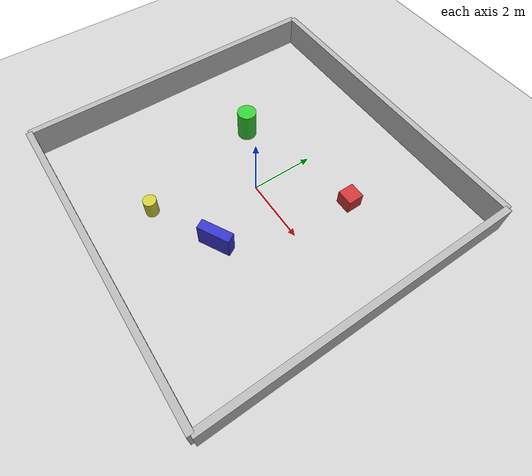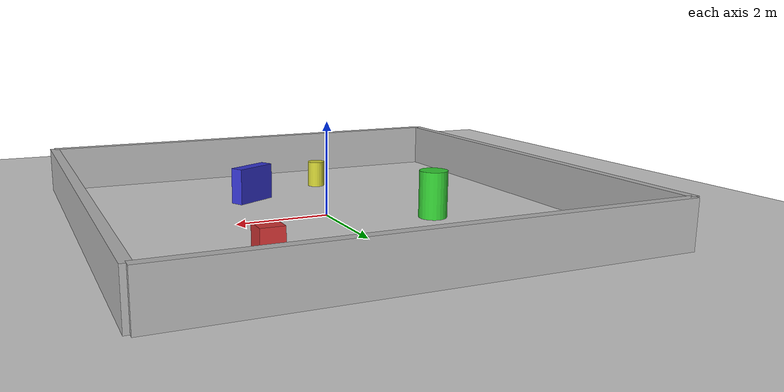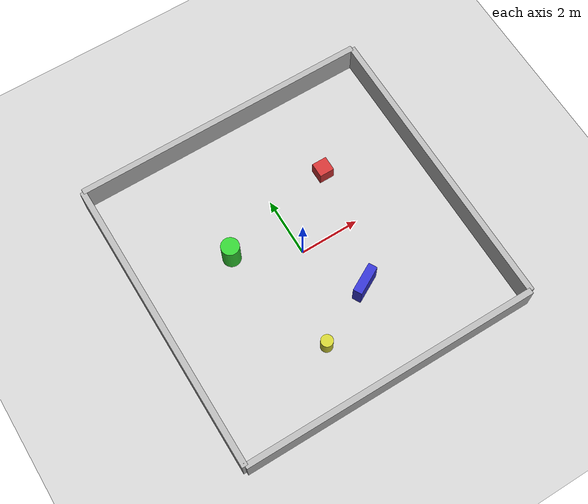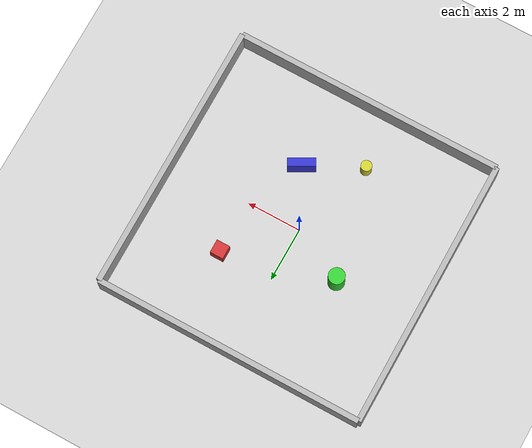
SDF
<?xml version="1.0"?>
<sdf version="1.8">
  <world name="herm_world">

    <!-- Physics -->
    <physics name="1ms" type="ignored">
      <max_step_size>0.001</max_step_size>
      <real_time_factor>1.0</real_time_factor>
    </physics>

    <!-- Plugins -->
    <plugin filename="gz-sim-physics-system" name="gz::sim::systems::Physics"/>
    <plugin filename="gz-sim-user-commands-system" name="gz::sim::systems::UserCommands"/>
    <plugin filename="gz-sim-scene-broadcaster-system" name="gz::sim::systems::SceneBroadcaster"/>
    <plugin filename="gz-sim-sensors-system" name="gz::sim::systems::Sensors">
      <render_engine>ogre2</render_engine>
    </plugin>
    <plugin filename="gz-sim-imu-system" name="gz::sim::systems::Imu"/>
    <plugin filename="gz-sim-contact-system" name="gz::sim::systems::Contact"/>

    <!-- Scene -->
    <scene>
      <ambient>0.4 0.4 0.4 1</ambient>
      <background>0.7 0.7 0.7 1</background>
      <shadows>true</shadows>
    </scene>

    <!-- Sun -->
    <light type="directional" name="sun">
      <cast_shadows>true</cast_shadows>
      <pose>0 0 10 0 0 0</pose>
      <diffuse>0.8 0.8 0.8 1</diffuse>
      <specular>0.2 0.2 0.2 1</specular>
      <attenuation>
        <range>1000</range>
        <constant>0.9</constant>
        <linear>0.01</linear>
        <quadratic>0.001</quadratic>
      </attenuation>
      <direction>-0.5 0.1 -0.9</direction>
    </light>

    <!-- Ground Plane -->
    <model name="ground_plane">
      <static>true</static>
      <link name="link">
        <collision name="collision">
          <geometry>
            <plane>
              <normal>0 0 1</normal>
              <size>100 100</size>
            </plane>
          </geometry>
        </collision>
        <visual name="visual">
          <geometry>
            <plane>
              <normal>0 0 1</normal>
              <size>100 100</size>
            </plane>
          </geometry>
          <material>
            <ambient>0.8 0.8 0.8 1</ambient>
            <diffuse>0.8 0.8 0.8 1</diffuse>
            <specular>0.8 0.8 0.8 1</specular>
          </material>
        </visual>
      </link>
    </model>

    <!-- Wall North -->
    <model name="wall_north">
      <static>true</static>
      <pose>0 5 0.5 0 0 0</pose>
      <link name="link">
        <collision name="collision">
          <geometry>
            <box>
              <size>10 0.2 1</size>
            </box>
          </geometry>
        </collision>
        <visual name="visual">
          <geometry>
            <box>
              <size>10 0.2 1</size>
            </box>
          </geometry>
          <material>
            <ambient>0.7 0.7 0.7 1</ambient>
            <diffuse>0.7 0.7 0.7 1</diffuse>
          </material>
        </visual>
      </link>
    </model>

    <!-- Wall South -->
    <model name="wall_south">
      <static>true</static>
      <pose>0 -5 0.5 0 0 0</pose>
      <link name="link">
        <collision name="collision">
          <geometry>
            <box>
              <size>10 0.2 1</size>
            </box>
          </geometry>
        </collision>
        <visual name="visual">
          <geometry>
            <box>
              <size>10 0.2 1</size>
            </box>
          </geometry>
          <material>
            <ambient>0.7 0.7 0.7 1</ambient>
            <diffuse>0.7 0.7 0.7 1</diffuse>
          </material>
        </visual>
      </link>
    </model>

    <!-- Wall East -->
    <model name="wall_east">
      <static>true</static>
      <pose>5 0 0.5 0 0 1.5708</pose>
      <link name="link">
        <collision name="collision">
          <geometry>
            <box>
              <size>10 0.2 1</size>
            </box>
          </geometry>
        </collision>
        <visual name="visual">
          <geometry>
            <box>
              <size>10 0.2 1</size>
            </box>
          </geometry>
          <material>
            <ambient>0.7 0.7 0.7 1</ambient>
            <diffuse>0.7 0.7 0.7 1</diffuse>
          </material>
        </visual>
      </link>
    </model>

    <!-- Wall West -->
    <model name="wall_west">
      <static>true</static>
      <pose>-5 0 0.5 0 0 1.5708</pose>
      <link name="link">
        <collision name="collision">
          <geometry>
            <box>
              <size>10 0.2 1</size>
            </box>
          </geometry>
        </collision>
        <visual name="visual">
          <geometry>
            <box>
              <size>10 0.2 1</size>
            </box>
          </geometry>
          <material>
            <ambient>0.7 0.7 0.7 1</ambient>
            <diffuse>0.7 0.7 0.7 1</diffuse>
          </material>
        </visual>
      </link>
    </model>

    <!-- Obstacle Box 1 -->
    <model name="box1">
      <static>true</static>
      <pose>2 2 0.25 0 0 0</pose>
      <link name="link">
        <collision name="collision">
          <geometry>
            <box>
              <size>0.5 0.5 0.5</size>
            </box>
          </geometry>
        </collision>
        <visual name="visual">
          <geometry>
            <box>
              <size>0.5 0.5 0.5</size>
            </box>
          </geometry>
          <material>
            <ambient>0.8 0.2 0.2 1</ambient>
            <diffuse>0.8 0.2 0.2 1</diffuse>
          </material>
        </visual>
      </link>
    </model>

    <!-- Obstacle Cylinder 1 -->
    <model name="cylinder1">
      <static>true</static>
      <pose>-2 1 0.5 0 0 0</pose>
      <link name="link">
        <collision name="collision">
          <geometry>
            <cylinder>
              <radius>0.3</radius>
              <length>1.0</length>
            </cylinder>
          </geometry>
        </collision>
        <visual name="visual">
          <geometry>
            <cylinder>
              <radius>0.3</radius>
              <length>1.0</length>
            </cylinder>
          </geometry>
          <material>
            <ambient>0.2 0.8 0.2 1</ambient>
            <diffuse>0.2 0.8 0.2 1</diffuse>
          </material>
        </visual>
      </link>
    </model>

    <!-- Obstacle Box 2 -->
    <model name="box2">
      <static>true</static>
      <pose>1 -2 0.4 0 0 0.5</pose>
      <link name="link">
        <collision name="collision">
          <geometry>
            <box>
              <size>1.0 0.3 0.8</size>
            </box>
          </geometry>
        </collision>
        <visual name="visual">
          <geometry>
            <box>
              <size>1.0 0.3 0.8</size>
            </box>
          </geometry>
          <material>
            <ambient>0.2 0.2 0.8 1</ambient>
            <diffuse>0.2 0.2 0.8 1</diffuse>
          </material>
        </visual>
      </link>
    </model>

    <!-- Obstacle Cylinder 2 -->
    <model name="cylinder2">
      <static>true</static>
      <pose>-1 -3 0.3 0 0 0</pose>
      <link name="link">
        <collision name="collision">
          <geometry>
            <cylinder>
              <radius>0.2</radius>
              <length>0.6</length>
            </cylinder>
          </geometry>
        </collision>
        <visual name="visual">
          <geometry>
            <cylinder>
              <radius>0.2</radius>
              <length>0.6</length>
            </cylinder>
          </geometry>
          <material>
            <ambient>0.8 0.8 0.2 1</ambient>
            <diffuse>0.8 0.8 0.2 1</diffuse>
          </material>
        </visual>
      </link>
    </model>

  </world>
</sdf>
